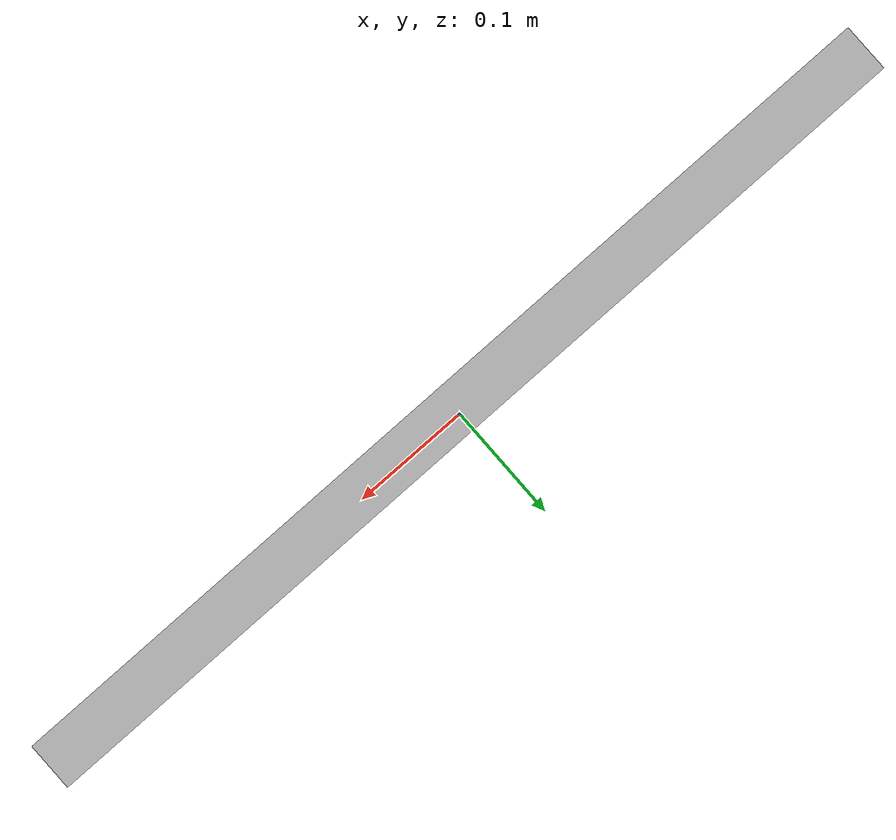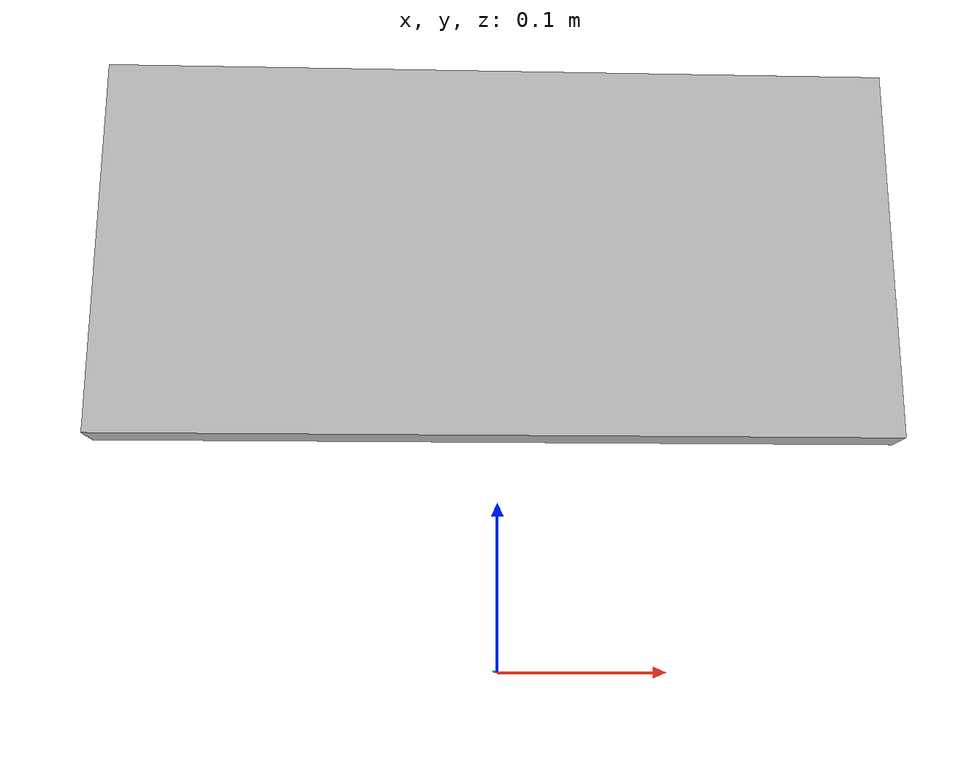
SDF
<?xml version="1.0" ?>
<sdf version="1.6">
  <model name="dog_panel">
    <static>true</static>
    <link name="box">
      <pose>0 0 0.26 0 0 0</pose>
      <collision name="collision">
        <geometry>
          <box>
            <size>0.50 0.025 0.24</size>
          </box>
        </geometry>
      </collision>
      <visual name="visual">
        <geometry>
          <box>
            <size>0.50 0.025 0.24</size>
          </box>
        </geometry>
        <material>
          <script>
            <uri>model://dog_panel/materials/scripts</uri>
            <uri>model://dog_panel/materials/textures</uri>
            <name>dog_panel</name>
          </script>
        </material>
      </visual>
    </link>
  </model>
</sdf>
